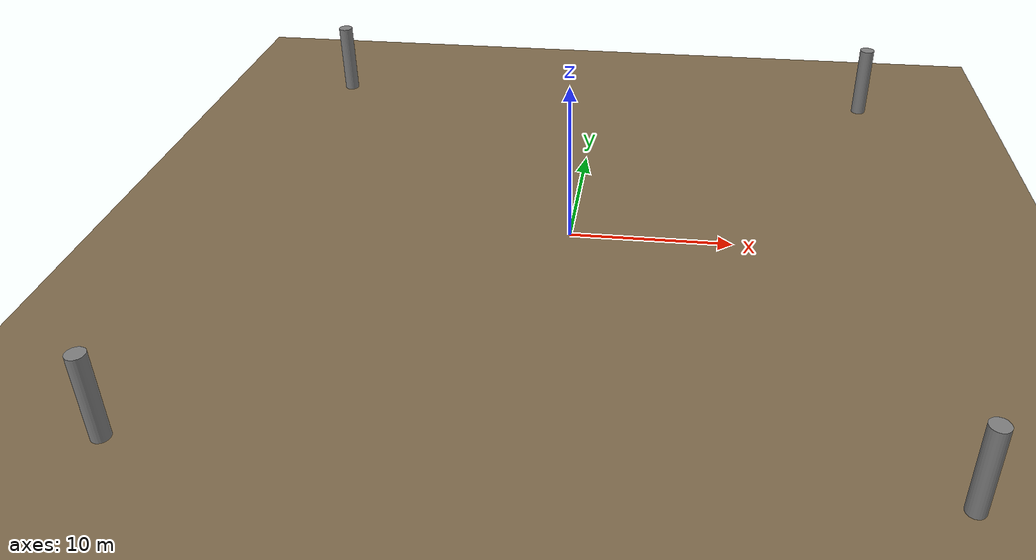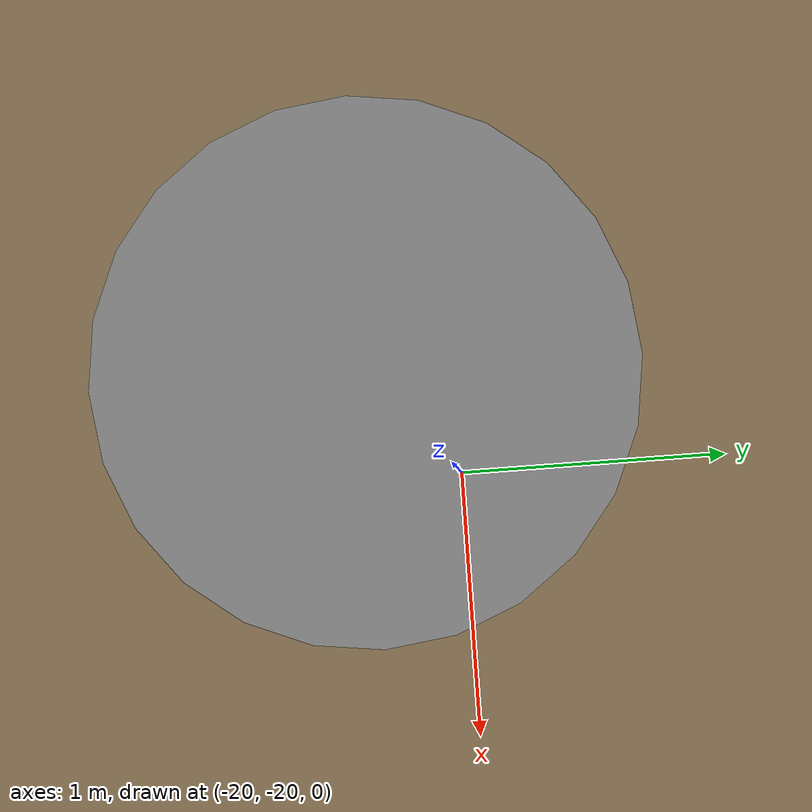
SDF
<?xml version="1.0"?>
<sdf version="1.9">
  <world name="border_world">
    <physics name="1ms" type="ode">
      <max_step_size>0.001</max_step_size>
      <real_time_factor>1.0</real_time_factor>
    </physics>

    <plugin filename="gz-sim-physics-system" name="gz::sim::systems::Physics"/>
    <plugin filename="gz-sim-user-commands-system" name="gz::sim::systems::UserCommands"/>
    <plugin filename="gz-sim-scene-broadcaster-system" name="gz::sim::systems::SceneBroadcaster"/>
    <plugin filename="gz-sim-sensors-system" name="gz::sim::systems::Sensors">
      <render_engine>ogre2</render_engine>
    </plugin>
    <plugin filename="gz-sim-imu-system" name="gz::sim::systems::Imu"/>

    <light type="directional" name="sun">
      <cast_shadows>true</cast_shadows>
      <pose>0 0 10 0 0 0</pose>
      <diffuse>0.8 0.8 0.8 1</diffuse>
      <specular>0.2 0.2 0.2 1</specular>
      <direction>-0.5 0.1 -0.9</direction>
    </light>

    <model name="ground_plane">
      <static>true</static>
      <link name="link">
        <collision name="collision">
          <geometry><plane><normal>0 0 1</normal><size>200 200</size></plane></geometry>
        </collision>
        <visual name="visual">
          <geometry><plane><normal>0 0 1</normal><size>200 200</size></plane></geometry>
          <material>
            <ambient>0.35 0.3 0.2 1</ambient>
            <diffuse>0.5 0.42 0.3 1</diffuse>
          </material>
        </visual>
      </link>
    </model>

    <model name="watchtower_1">
      <static>true</static>
      <pose>20 20 2.5 0 0 0</pose>
      <link name="link">
        <collision name="collision"><geometry><cylinder><radius>0.5</radius><length>5</length></cylinder></geometry></collision>
        <visual name="visual">
          <geometry><cylinder><radius>0.5</radius><length>5</length></cylinder></geometry>
          <material><ambient>0.4 0.4 0.4 1</ambient><diffuse>0.5 0.5 0.5 1</diffuse></material>
        </visual>
      </link>
    </model>

    <model name="watchtower_2">
      <static>true</static>
      <pose>-20 20 2.5 0 0 0</pose>
      <link name="link">
        <collision name="collision"><geometry><cylinder><radius>0.5</radius><length>5</length></cylinder></geometry></collision>
        <visual name="visual">
          <geometry><cylinder><radius>0.5</radius><length>5</length></cylinder></geometry>
          <material><ambient>0.4 0.4 0.4 1</ambient><diffuse>0.5 0.5 0.5 1</diffuse></material>
        </visual>
      </link>
    </model>

    <model name="watchtower_3">
      <static>true</static>
      <pose>20 -20 2.5 0 0 0</pose>
      <link name="link">
        <collision name="collision"><geometry><cylinder><radius>0.5</radius><length>5</length></cylinder></geometry></collision>
        <visual name="visual">
          <geometry><cylinder><radius>0.5</radius><length>5</length></cylinder></geometry>
          <material><ambient>0.4 0.4 0.4 1</ambient><diffuse>0.5 0.5 0.5 1</diffuse></material>
        </visual>
      </link>
    </model>

    <model name="watchtower_4">
      <static>true</static>
      <pose>-20 -20 2.5 0 0 0</pose>
      <link name="link">
        <collision name="collision"><geometry><cylinder><radius>0.5</radius><length>5</length></cylinder></geometry></collision>
        <visual name="visual">
          <geometry><cylinder><radius>0.5</radius><length>5</length></cylinder></geometry>
          <material><ambient>0.4 0.4 0.4 1</ambient><diffuse>0.5 0.5 0.5 1</diffuse></material>
        </visual>
      </link>
    </model>

  </world>
</sdf>
